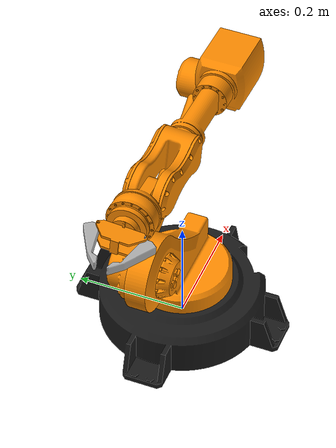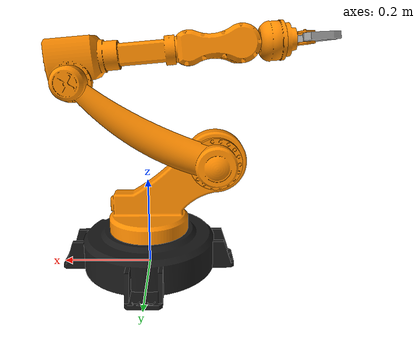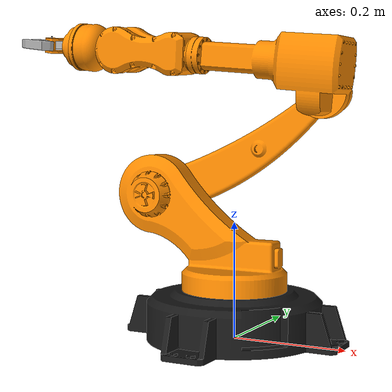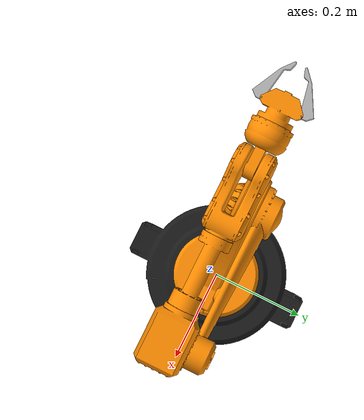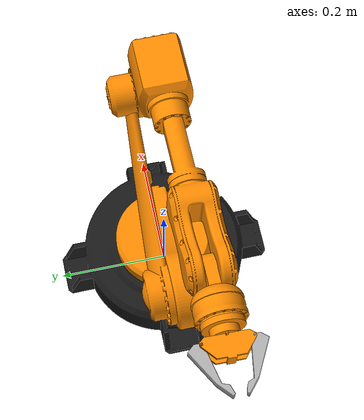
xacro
<?xml version="1.0"?>
<robot xmlns:xacro="http://www.ros.org/wiki/xacro" name="Robotic">
    <xacro:arg name="initial_positions_file" default="initial_positions.yaml" />

    <!-- Import Robotic urdf file -->
    <xacro:include filename="$(find industrial_robot_arm)/urdf/Robotic.xacro" />

    <!-- Import control_xacro -->
    <xacro:include filename="Robotic.ros2_control.xacro" />

    <xacro:Robotic_ros2_control name="FakeSystem" initial_positions_file="$(arg initial_positions_file)"/>

</robot>

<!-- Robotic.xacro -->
<robot name="Robotic" xmlns:xacro="http://www.ros.org/wiki/xacro">

<xacro:include filename="$(find industrial_robot_arm)/urdf/materials.xacro" />
<xacro:include filename="$(find industrial_robot_arm)/urdf/Robotic.gazebo" />
<link name="base_link">
  <inertial>
    <origin xyz="0.0007806396519895975 -0.0007806396451176688 0.048593515527982106" rpy="0 0 0"/>
    <mass value="12.473677758806172"/>
    <inertia ixx="0.118752" iyy="0.118752" izz="0.218412" ixy="0.000272" iyz="-0.000713" ixz="0.000713"/>
  </inertial>
  <visual>
    <origin xyz="0 0 0" rpy="0 0 0"/>
    <geometry>
      <mesh filename="package://industrial_robot_arm/meshes/base_link.stl" scale="0.001 0.001 0.001"/>
    </geometry>
    <material name="black"/>
  </visual>
  <collision>
    <origin xyz="0 0 0" rpy="0 0 0"/>
    <geometry>
      <mesh filename="package://industrial_robot_arm/meshes/base_link.stl" scale="0.001 0.001 0.001"/>
    </geometry>
  </collision>
</link>

<link name="link_1_1">
  <inertial>
    <origin xyz="-0.05686158608037086 -0.002799253146421306 0.06290227912529588" rpy="0 0 0"/>
    <mass value="18.098361474018464"/>
    <inertia ixx="0.09336" iyy="0.186513" izz="0.127406" ixy="-0.003762" iyz="0.003286" ixz="0.071121"/>
  </inertial>
  <visual>
    <origin xyz="-0.0 -0.0 -0.104" rpy="0 0 0"/>
    <geometry>
      <mesh filename="package://industrial_robot_arm/meshes/link_1_1.stl" scale="0.001 0.001 0.001"/>
    </geometry>
    <material name="orange"/>
  </visual>
  <collision>
    <origin xyz="-0.0 -0.0 -0.104" rpy="0 0 0"/>
    <geometry>
      <mesh filename="package://industrial_robot_arm/meshes/link_1_1.stl" scale="0.001 0.001 0.001"/>
    </geometry>
  </collision>
</link>

<link name="link_2_1">
  <inertial>
    <origin xyz="0.12229160527590884 0.03527212181755472 0.06142410226405509" rpy="0 0 0"/>
    <mass value="6.899829498653837"/>
    <inertia ixx="0.035048" iyy="0.134098" izz="0.101041" ixy="0.000808" iyz="0.000236" ixz="-0.054425"/>
  </inertial>
  <visual>
    <origin xyz="0.15 -0.0 -0.244" rpy="0 0 0"/>
    <geometry>
      <mesh filename="package://industrial_robot_arm/meshes/link_2_1.stl" scale="0.001 0.001 0.001"/>
    </geometry>
    <material name="orange"/>
  </visual>
  <collision>
    <origin xyz="0.15 -0.0 -0.244" rpy="0 0 0"/>
    <geometry>
      <mesh filename="package://industrial_robot_arm/meshes/link_2_1.stl" scale="0.001 0.001 0.001"/>
    </geometry>
  </collision>
</link>

<link name="link_3_1">
  <inertial>
    <origin xyz="-0.03191808932938957 -0.02504426785289398 0.04186817725206715" rpy="0 0 0"/>
    <mass value="9.99270875492589"/>
    <inertia ixx="0.01399" iyy="0.051348" izz="0.047743" ixy="-0.000586" iyz="0.00092" ixz="0.005161"/>
  </inertial>
  <visual>
    <origin xyz="-0.153109 -0.0 -0.419" rpy="0 0 0"/>
    <geometry>
      <mesh filename="package://industrial_robot_arm/meshes/link_3_1.stl" scale="0.001 0.001 0.001"/>
    </geometry>
    <material name="orange"/>
  </visual>
  <collision>
    <origin xyz="-0.153109 -0.0 -0.419" rpy="0 0 0"/>
    <geometry>
      <mesh filename="package://industrial_robot_arm/meshes/link_3_1.stl" scale="0.001 0.001 0.001"/>
    </geometry>
  </collision>
</link>

<link name="link_4_1">
  <inertial>
    <origin xyz="-0.09945544404066245 1.0741896244378935e-07 0.008701266078208925" rpy="0 0 0"/>
    <mass value="4.896548707938916"/>
    <inertia ixx="0.004672" iyy="0.015604" izz="0.016812" ixy="-7e-06" iyz="-7.7e-05" ixz="0.00107"/>
  </inertial>
  <visual>
    <origin xyz="0.043204 0.026956 -0.481347" rpy="0 0 0"/>
    <geometry>
      <mesh filename="package://industrial_robot_arm/meshes/link_4_1.stl" scale="0.001 0.001 0.001"/>
    </geometry>
    <material name="orange"/>
  </visual>
  <collision>
    <origin xyz="0.043204 0.026956 -0.481347" rpy="0 0 0"/>
    <geometry>
      <mesh filename="package://industrial_robot_arm/meshes/link_4_1.stl" scale="0.001 0.001 0.001"/>
    </geometry>
  </collision>
</link>

<link name="link_5_1">
  <inertial>
    <origin xyz="-0.0595097850745733 -0.012477892757639037 0.004462237715588346" rpy="0 0 0"/>
    <mass value="2.4502212088594084"/>
    <inertia ixx="0.001692" iyy="0.00255" izz="0.002521" ixy="0.0" iyz="1e-06" ixz="7.3e-05"/>
  </inertial>
  <visual>
    <origin xyz="0.201016 0.014478 -0.495898" rpy="0 0 0"/>
    <geometry>
      <mesh filename="package://industrial_robot_arm/meshes/link_5_1.stl" scale="0.001 0.001 0.001"/>
    </geometry>
    <material name="orange"/>
  </visual>
  <collision>
    <origin xyz="0.201016 0.014478 -0.495898" rpy="0 0 0"/>
    <geometry>
      <mesh filename="package://industrial_robot_arm/meshes/link_5_1.stl" scale="0.001 0.001 0.001"/>
    </geometry>
  </collision>
</link>

<link name="link_6_1">
  <inertial>
    <origin xyz="-0.008159984839289869 1.4601279601074435e-05 0.0007194640373505701" rpy="0 0 0"/>
    <mass value="0.6303591845639697"/>
    <inertia ixx="0.000332" iyy="0.000301" izz="0.000357" ixy="-0.0" iyz="-3e-06" ixz="2e-06"/>
  </inertial>
  <visual>
    <origin xyz="0.304684 0.026956 -0.504224" rpy="0 0 0"/>
    <geometry>
      <mesh filename="package://industrial_robot_arm/meshes/link_6_1.stl" scale="0.001 0.001 0.001"/>
    </geometry>
    <material name="orange"/>
  </visual>
  <collision>
    <origin xyz="0.304684 0.026956 -0.504224" rpy="0 0 0"/>
    <geometry>
      <mesh filename="package://industrial_robot_arm/meshes/link_6_1.stl" scale="0.001 0.001 0.001"/>
    </geometry>
  </collision>
</link>

<link name="gripper_left_1">
  <inertial>
    <origin xyz="-0.030716855158846146 0.0011153711346979928 0.011819301380110614" rpy="0 0 0"/>
    <mass value="0.17294239070216955"/>
    <inertia ixx="2.6e-05" iyy="0.000103" izz="0.000119" ixy="3.8e-05" iyz="-4e-06" ixz="1e-05"/>
  </inertial>
  <visual>
    <origin xyz="0.328483 0.06716 -0.494859" rpy="0 0 0"/>
    <geometry>
      <mesh filename="package://industrial_robot_arm/meshes/gripper_left_1.stl" scale="0.001 0.001 0.001"/>
    </geometry>
    <material name="silver"/>
  </visual>
  <collision>
    <origin xyz="0.328483 0.06716 -0.494859" rpy="0 0 0"/>
    <geometry>
      <mesh filename="package://industrial_robot_arm/meshes/gripper_left_1.stl" scale="0.001 0.001 0.001"/>
    </geometry>
  </collision>
</link>

<link name="gripper_right_1">
  <inertial>
    <origin xyz="-0.03070809444653194 -0.0032218850816975956 0.011541454151286601" rpy="0 0 0"/>
    <mass value="0.1727285383045678"/>
    <inertia ixx="2.8e-05" iyy="0.0001" izz="0.00012" ixy="-4.1e-05" iyz="2e-06" ixz="6e-06"/>
  </inertial>
  <visual>
    <origin xyz="0.328062 -0.014315 -0.499679" rpy="0 0 0"/>
    <geometry>
      <mesh filename="package://industrial_robot_arm/meshes/gripper_right_1.stl" scale="0.001 0.001 0.001"/>
    </geometry>
    <material name="silver"/>
  </visual>
  <collision>
    <origin xyz="0.328062 -0.014315 -0.499679" rpy="0 0 0"/>
    <geometry>
      <mesh filename="package://industrial_robot_arm/meshes/gripper_right_1.stl" scale="0.001 0.001 0.001"/>
    </geometry>
  </collision>
</link>

<joint name="revolute_1" type="continuous">
  <origin xyz="0.0 0.0 0.104" rpy="0 0 0"/>
  <parent link="base_link"/>
  <child link="link_1_1"/>
  <axis xyz="0.0 0.0 1.0"/>
</joint>

<joint name="revolute_2" type="revolute">
  <origin xyz="-0.15 0.0 0.14" rpy="0 0 0"/>
  <parent link="link_1_1"/>
  <child link="link_2_1"/>
  <axis xyz="0.0 1.0 0.0"/>
  <limit upper="0.698132" lower="-3.141593" effort="100" velocity="100"/>
</joint>

<joint name="revolute_3" type="revolute">
  <origin xyz="0.303109 0.0 0.175" rpy="0 0 0"/>
  <parent link="link_2_1"/>
  <child link="link_3_1"/>
  <axis xyz="0.0 -1.0 -0.0"/>
  <limit upper="0.349066" lower="-2.443461" effort="100" velocity="100"/>
</joint>

<joint name="revolute_4" type="continuous">
  <origin xyz="-0.196313 -0.026956 0.062347" rpy="0 0 0"/>
  <parent link="link_3_1"/>
  <child link="link_4_1"/>
  <axis xyz="-0.996195 0.0 0.087156"/>
</joint>

<joint name="revolute_5" type="revolute">
  <origin xyz="-0.157812 0.012478 0.014551" rpy="0 0 0"/>
  <parent link="link_4_1"/>
  <child link="link_5_1"/>
  <axis xyz="-0.005166 -0.998242 -0.059048"/>
  <limit upper="1.9" lower="-1.9" effort="100" velocity="100"/>
</joint>

<joint name="revolute_6" type="continuous">
  <origin xyz="-0.103668 -0.012478 0.008326" rpy="0 0 0"/>
  <parent link="link_5_1"/>
  <child link="link_6_1"/>
  <axis xyz="-0.996195 -0.0 0.087156"/>
</joint>

<joint name="revolute_7" type="revolute">
  <origin xyz="-0.023799 -0.040204 -0.009365" rpy="0 0 0"/>
  <parent link="link_6_1"/>
  <child link="gripper_left_1"/>
  <axis xyz="-0.087003 0.059274 -0.994443"/>
  <limit upper="0" lower="-0.872665" effort="100" velocity="100"/>
</joint>

<joint name="revolute_8" type="revolute">
  <origin xyz="-0.023378 0.041271 -0.004545" rpy="0 0 0"/>
  <parent link="link_6_1"/>
  <child link="gripper_right_1"/>
  <axis xyz="-0.087003 0.059274 -0.994443"/>
  <limit upper="0.872665" lower="0.0" effort="100" velocity="100"/>
  <mimic joint="revolute_7" multiplier="-1" offset="0"/>
</joint>

</robot>

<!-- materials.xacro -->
<robot name="Robotic" xmlns:xacro="http://www.ros.org/wiki/xacro" >

<material name="silver">
  <color rgba="0.700 0.700 0.700 1.000"/>
</material>

<material name="black">
  <color rgba="0.1 0.1 0.1 1.0"/>
</material>

<material name="orange">
  <color rgba="1.0 0.55 0.0 1.0"/>
</material>

</robot>

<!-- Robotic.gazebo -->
<robot name="Robotic" xmlns:xacro="http://www.ros.org/wiki/xacro" >

<xacro:property name="body_color" value="Gazebo/Silver" />

<gazebo>
  <plugin filename="libgazebo_ros2_control.so" name="gazebo_ros2_control">
    <parameters>$(find industrial_robot_arm_moveit)/config/ros2_controllers.yaml</parameters>
  </plugin>
</gazebo>

<gazebo reference="base_link">
  <material>${body_color}</material>
  <mu1>0.2</mu1>
  <mu2>0.2</mu2>
  <selfCollide>true</selfCollide>
  <gravity>true</gravity>
</gazebo>

<gazebo reference="Component2_1">
  <material>${body_color}</material>
  <mu1>0.2</mu1>
  <mu2>0.2</mu2>
  <selfCollide>true</selfCollide>
</gazebo>

<gazebo reference="Component3_1">
  <material>${body_color}</material>
  <mu1>0.2</mu1>
  <mu2>0.2</mu2>
  <selfCollide>true</selfCollide>
</gazebo>

<gazebo reference="Component4_1">
  <material>${body_color}</material>
  <mu1>0.2</mu1>
  <mu2>0.2</mu2>
  <selfCollide>true</selfCollide>
</gazebo>

<gazebo reference="Component5_1">
  <material>${body_color}</material>
  <mu1>0.2</mu1>
  <mu2>0.2</mu2>
  <selfCollide>true</selfCollide>
</gazebo>

<gazebo reference="Component6_1">
  <material>${body_color}</material>
  <mu1>0.2</mu1>
  <mu2>0.2</mu2>
  <selfCollide>true</selfCollide>
</gazebo>

<gazebo reference="Component7_1">
  <material>${body_color}</material>
  <mu1>0.2</mu1>
  <mu2>0.2</mu2>
  <selfCollide>true</selfCollide>
</gazebo>

<gazebo reference="Component8_1">
  <material>${body_color}</material>
  <mu1>0.2</mu1>
  <mu2>0.2</mu2>
  <selfCollide>true</selfCollide>
</gazebo>

<gazebo reference="Component8_Mirror__1">
  <material>${body_color}</material>
  <mu1>0.2</mu1>
  <mu2>0.2</mu2>
  <selfCollide>true</selfCollide>
</gazebo>

</robot>
